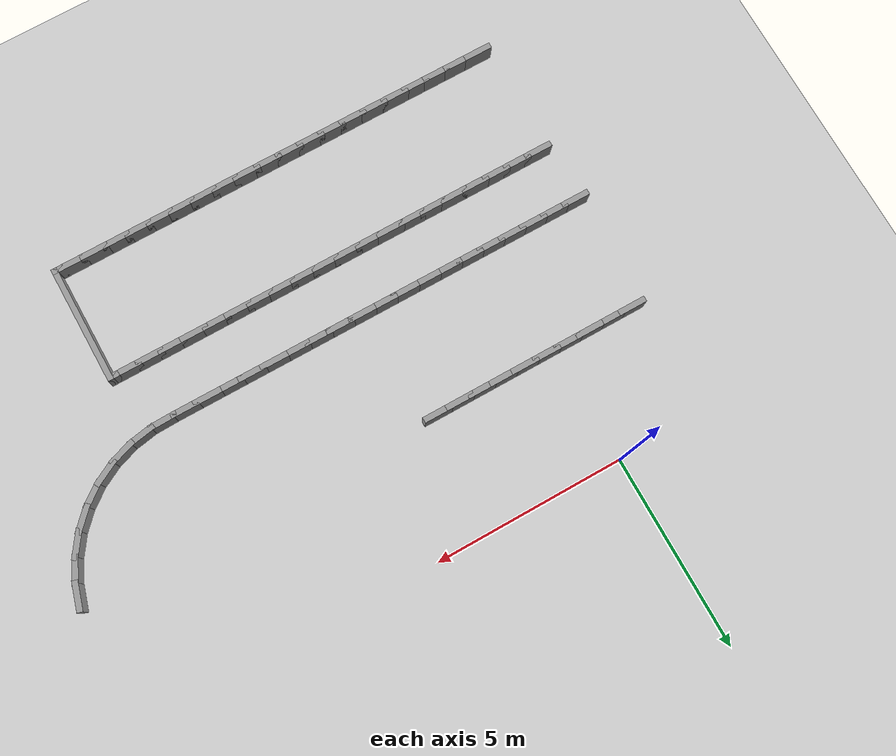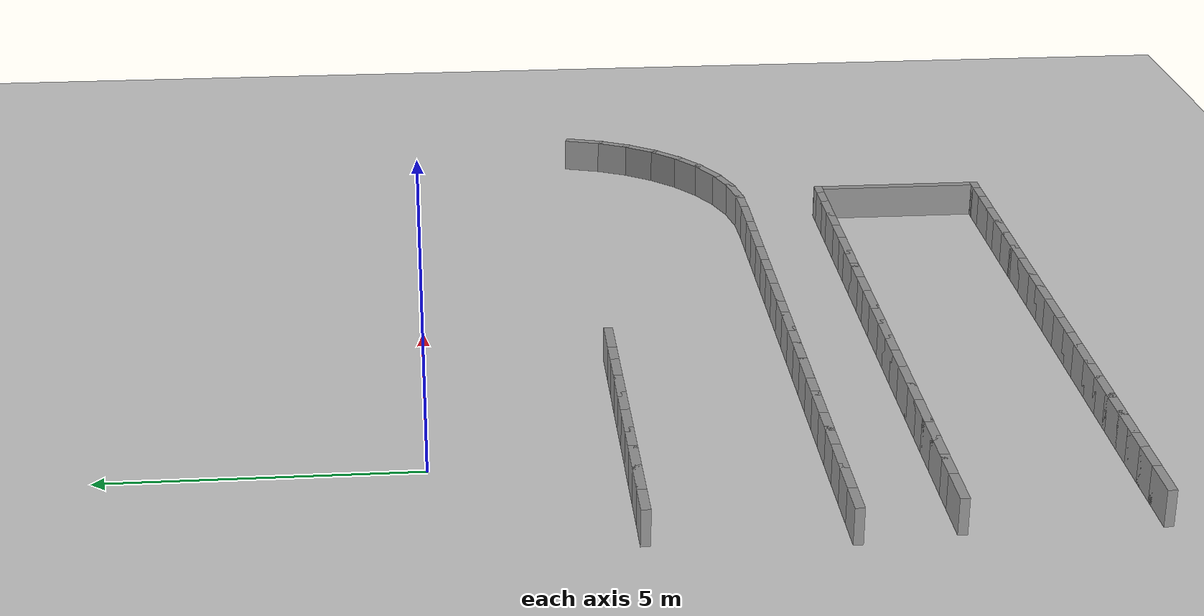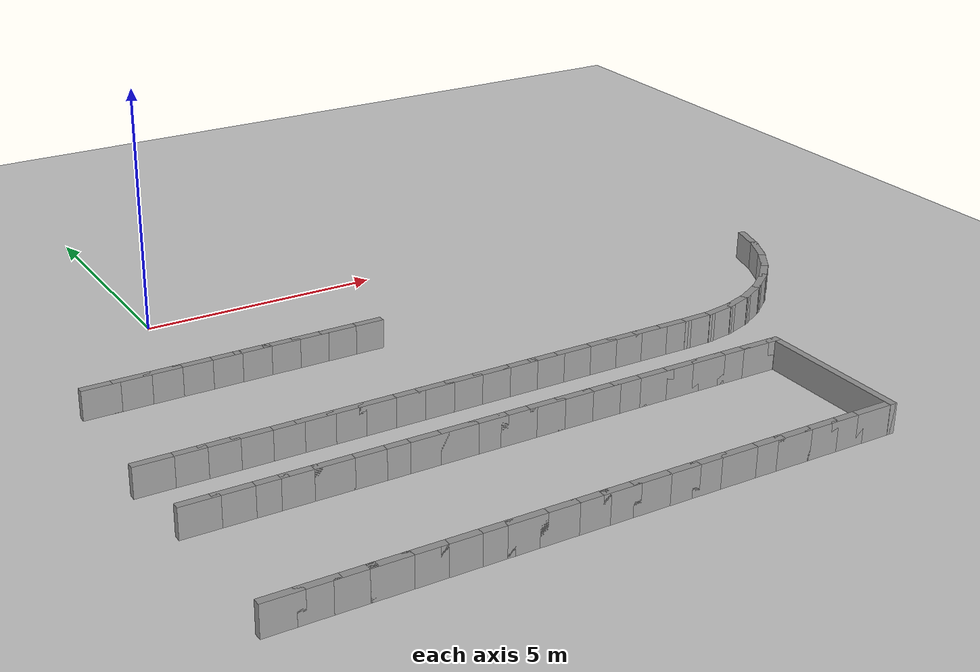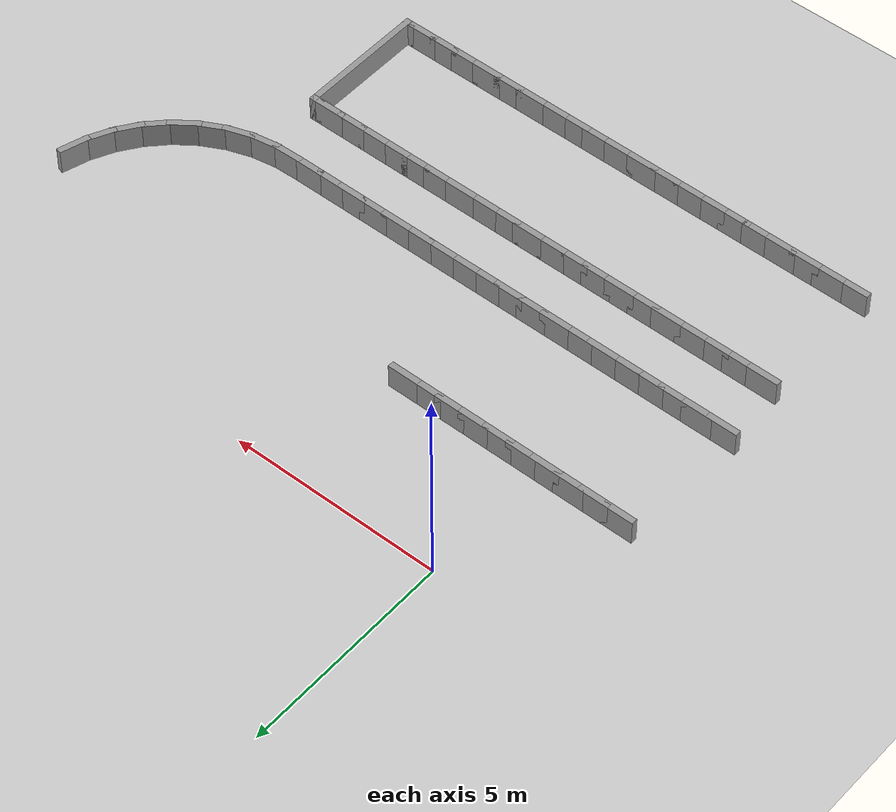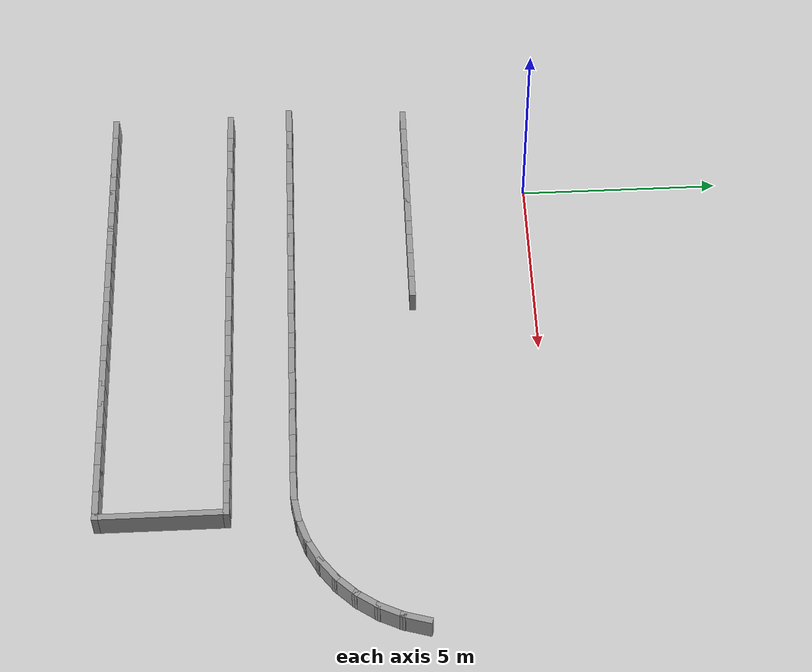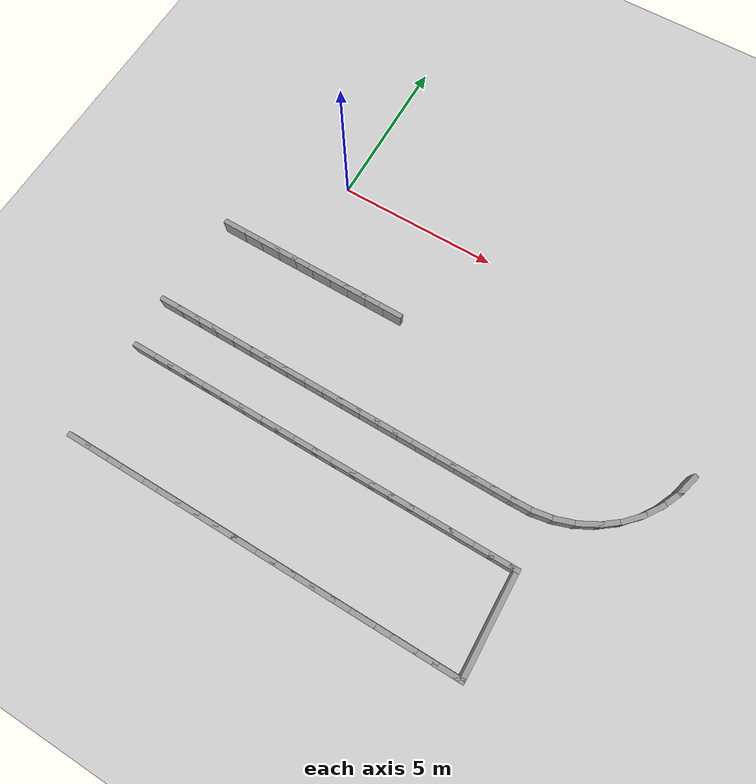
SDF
<sdf version="1.7">
 <world name="default">
  <model name="ground_plane">
   <static>1</static>
   <link name="link">
    <collision name="collision">
     <geometry><plane><normal>0 0 1</normal><size>100 100</size></plane></geometry>
     <surface><friction><ode><mu>100</mu><mu2>50</mu2></ode></friction></surface>
    </collision>
    <visual name="visual">
     <cast_shadows>0</cast_shadows>
     <geometry><plane><normal>0 0 1</normal><size>100 100</size></plane></geometry>
     <material>
      <script><uri>file://media/materials/scripts/gazebo.material</uri><name>Gazebo/Grey</name></script>
     </material>
    </visual>
   </link>
  </model>
  <model name="rand_serp_02">
   <link name="Wall_127">
    <collision name="Wall_127_Collision">
     <geometry><box><size>0.7493 0.1500 0.6000</size></box></geometry>
     <pose>0 0 0.3000 0 -0 0</pose>
    </collision>
    <visual name="Wall_127_Visual">
     <pose>0 0 0.3000 0 -0 0</pose>
     <geometry><box><size>0.7493 0.1500 0.6000</size></box></geometry>
     <material>
      <script><uri>file://media/materials/scripts/gazebo.material</uri><name>Gazebo/Grey</name></script>
      <ambient>1 1 1 1</ambient>
     </material>
    </visual>
    <pose>12.6799 -3.3543 0 0 -0 -1.86052</pose>
   </link>
   <link name="Wall_128">
    <collision name="Wall_128_Collision">
     <geometry><box><size>0.7493 0.1500 0.6000</size></box></geometry>
     <pose>0 0 0.3000 0 -0 0</pose>
    </collision>
    <visual name="Wall_128_Visual">
     <pose>0 0 0.3000 0 -0 0</pose>
     <geometry><box><size>0.7493 0.1500 0.6000</size></box></geometry>
     <material>
      <script><uri>file://media/materials/scripts/gazebo.material</uri><name>Gazebo/Grey</name></script>
      <ambient>1 1 1 1</ambient>
     </material>
    </visual>
    <pose>12.4644 -3.9115 0 0 -0 -2.01911</pose>
   </link>
   <link name="Wall_129">
    <collision name="Wall_129_Collision">
     <geometry><box><size>0.7493 0.1500 0.6000</size></box></geometry>
     <pose>0 0 0.3000 0 -0 0</pose>
    </collision>
    <visual name="Wall_129_Visual">
     <pose>0 0 0.3000 0 -0 0</pose>
     <geometry><box><size>0.7493 0.1500 0.6000</size></box></geometry>
     <material>
      <script><uri>file://media/materials/scripts/gazebo.material</uri><name>Gazebo/Grey</name></script>
      <ambient>1 1 1 1</ambient>
     </material>
    </visual>
    <pose>12.1636 -4.4277 0 0 -0 -2.17770</pose>
   </link>
   <link name="Wall_130">
    <collision name="Wall_130_Collision">
     <geometry><box><size>0.7493 0.1500 0.6000</size></box></geometry>
     <pose>0 0 0.3000 0 -0 0</pose>
    </collision>
    <visual name="Wall_130_Visual">
     <pose>0 0 0.3000 0 -0 0</pose>
     <geometry><box><size>0.7493 0.1500 0.6000</size></box></geometry>
     <material>
      <script><uri>file://media/materials/scripts/gazebo.material</uri><name>Gazebo/Grey</name></script>
      <ambient>1 1 1 1</ambient>
     </material>
    </visual>
    <pose>11.7851 -4.8899 0 0 -0 -2.33629</pose>
   </link>
   <link name="Wall_131">
    <collision name="Wall_131_Collision">
     <geometry><box><size>0.7493 0.1500 0.6000</size></box></geometry>
     <pose>0 0 0.3000 0 -0 0</pose>
    </collision>
    <visual name="Wall_131_Visual">
     <pose>0 0 0.3000 0 -0 0</pose>
     <geometry><box><size>0.7493 0.1500 0.6000</size></box></geometry>
     <material>
      <script><uri>file://media/materials/scripts/gazebo.material</uri><name>Gazebo/Grey</name></script>
      <ambient>1 1 1 1</ambient>
     </material>
    </visual>
    <pose>11.3383 -5.2866 0 0 -0 -2.49488</pose>
   </link>
   <link name="Wall_132">
    <collision name="Wall_132_Collision">
     <geometry><box><size>0.7493 0.1500 0.6000</size></box></geometry>
     <pose>0 0 0.3000 0 -0 0</pose>
    </collision>
    <visual name="Wall_132_Visual">
     <pose>0 0 0.3000 0 -0 0</pose>
     <geometry><box><size>0.7493 0.1500 0.6000</size></box></geometry>
     <material>
      <script><uri>file://media/materials/scripts/gazebo.material</uri><name>Gazebo/Grey</name></script>
      <ambient>1 1 1 1</ambient>
     </material>
    </visual>
    <pose>10.8345 -5.6077 0 0 -0 -2.65347</pose>
   </link>
   <link name="Wall_133">
    <collision name="Wall_133_Collision">
     <geometry><box><size>0.7493 0.1500 0.6000</size></box></geometry>
     <pose>0 0 0.3000 0 -0 0</pose>
    </collision>
    <visual name="Wall_133_Visual">
     <pose>0 0 0.3000 0 -0 0</pose>
     <geometry><box><size>0.7493 0.1500 0.6000</size></box></geometry>
     <material>
      <script><uri>file://media/materials/scripts/gazebo.material</uri><name>Gazebo/Grey</name></script>
      <ambient>1 1 1 1</ambient>
     </material>
    </visual>
    <pose>10.2863 -5.8452 0 0 -0 -2.81205</pose>
   </link>
   <link name="Wall_134">
    <collision name="Wall_134_Collision">
     <geometry><box><size>0.7493 0.1500 0.6000</size></box></geometry>
     <pose>0 0 0.3000 0 -0 0</pose>
    </collision>
    <visual name="Wall_134_Visual">
     <pose>0 0 0.3000 0 -0 0</pose>
     <geometry><box><size>0.7493 0.1500 0.6000</size></box></geometry>
     <material>
      <script><uri>file://media/materials/scripts/gazebo.material</uri><name>Gazebo/Grey</name></script>
      <ambient>1 1 1 1</ambient>
     </material>
    </visual>
    <pose>9.7075 -5.9931 0 0 -0 -2.97064</pose>
   </link>
   <link name="Wall_135">
    <collision name="Wall_135_Collision">
     <geometry><box><size>0.7497 0.1500 0.6000</size></box></geometry>
     <pose>0 0 0.3000 0 -0 0</pose>
    </collision>
    <visual name="Wall_135_Visual">
     <pose>0 0 0.3000 0 -0 0</pose>
     <geometry><box><size>0.7497 0.1500 0.6000</size></box></geometry>
     <material>
      <script><uri>file://media/materials/scripts/gazebo.material</uri><name>Gazebo/Grey</name></script>
      <ambient>1 1 1 1</ambient>
     </material>
    </visual>
    <pose>9.1125 -6.0524 0 0 -0 -3.11404</pose>
   </link>
   <link name="Wall_136">
    <collision name="Wall_136_Collision">
     <geometry><box><size>0.7500 0.1500 0.6000</size></box></geometry>
     <pose>0 0 0.3000 0 -0 0</pose>
    </collision>
    <visual name="Wall_136_Visual">
     <pose>0 0 0.3000 0 -0 0</pose>
     <geometry><box><size>0.7500 0.1500 0.6000</size></box></geometry>
     <material>
      <script><uri>file://media/materials/scripts/gazebo.material</uri><name>Gazebo/Grey</name></script>
      <ambient>1 1 1 1</ambient>
     </material>
    </visual>
    <pose>8.5127 -6.0606 0 0 -0 3.14159</pose>
   </link>
   <link name="Wall_137">
    <collision name="Wall_137_Collision">
     <geometry><box><size>0.7500 0.1500 0.6000</size></box></geometry>
     <pose>0 0 0.3000 0 -0 0</pose>
    </collision>
    <visual name="Wall_137_Visual">
     <pose>0 0 0.3000 0 -0 0</pose>
     <geometry><box><size>0.7500 0.1500 0.6000</size></box></geometry>
     <material>
      <script><uri>file://media/materials/scripts/gazebo.material</uri><name>Gazebo/Grey</name></script>
      <ambient>1 1 1 1</ambient>
     </material>
    </visual>
    <pose>7.9127 -6.0606 0 0 -0 3.14159</pose>
   </link>
   <link name="Wall_138">
    <collision name="Wall_138_Collision">
     <geometry><box><size>0.7500 0.1500 0.6000</size></box></geometry>
     <pose>0 0 0.3000 0 -0 0</pose>
    </collision>
    <visual name="Wall_138_Visual">
     <pose>0 0 0.3000 0 -0 0</pose>
     <geometry><box><size>0.7500 0.1500 0.6000</size></box></geometry>
     <material>
      <script><uri>file://media/materials/scripts/gazebo.material</uri><name>Gazebo/Grey</name></script>
      <ambient>1 1 1 1</ambient>
     </material>
    </visual>
    <pose>7.3127 -6.0606 0 0 -0 3.14159</pose>
   </link>
   <link name="Wall_139">
    <collision name="Wall_139_Collision">
     <geometry><box><size>0.7500 0.1500 0.6000</size></box></geometry>
     <pose>0 0 0.3000 0 -0 0</pose>
    </collision>
    <visual name="Wall_139_Visual">
     <pose>0 0 0.3000 0 -0 0</pose>
     <geometry><box><size>0.7500 0.1500 0.6000</size></box></geometry>
     <material>
      <script><uri>file://media/materials/scripts/gazebo.material</uri><name>Gazebo/Grey</name></script>
      <ambient>1 1 1 1</ambient>
     </material>
    </visual>
    <pose>6.7127 -6.0606 0 0 -0 3.14159</pose>
   </link>
   <link name="Wall_140">
    <collision name="Wall_140_Collision">
     <geometry><box><size>0.7500 0.1500 0.6000</size></box></geometry>
     <pose>0 0 0.3000 0 -0 0</pose>
    </collision>
    <visual name="Wall_140_Visual">
     <pose>0 0 0.3000 0 -0 0</pose>
     <geometry><box><size>0.7500 0.1500 0.6000</size></box></geometry>
     <material>
      <script><uri>file://media/materials/scripts/gazebo.material</uri><name>Gazebo/Grey</name></script>
      <ambient>1 1 1 1</ambient>
     </material>
    </visual>
    <pose>6.1127 -6.0606 0 0 -0 3.14159</pose>
   </link>
   <link name="Wall_141">
    <collision name="Wall_141_Collision">
     <geometry><box><size>0.7500 0.1500 0.6000</size></box></geometry>
     <pose>0 0 0.3000 0 -0 0</pose>
    </collision>
    <visual name="Wall_141_Visual">
     <pose>0 0 0.3000 0 -0 0</pose>
     <geometry><box><size>0.7500 0.1500 0.6000</size></box></geometry>
     <material>
      <script><uri>file://media/materials/scripts/gazebo.material</uri><name>Gazebo/Grey</name></script>
      <ambient>1 1 1 1</ambient>
     </material>
    </visual>
    <pose>5.5127 -6.0606 0 0 -0 3.14159</pose>
   </link>
   <link name="Wall_142">
    <collision name="Wall_142_Collision">
     <geometry><box><size>0.7500 0.1500 0.6000</size></box></geometry>
     <pose>0 0 0.3000 0 -0 0</pose>
    </collision>
    <visual name="Wall_142_Visual">
     <pose>0 0 0.3000 0 -0 0</pose>
     <geometry><box><size>0.7500 0.1500 0.6000</size></box></geometry>
     <material>
      <script><uri>file://media/materials/scripts/gazebo.material</uri><name>Gazebo/Grey</name></script>
      <ambient>1 1 1 1</ambient>
     </material>
    </visual>
    <pose>4.9127 -6.0606 0 0 -0 3.14159</pose>
   </link>
   <link name="Wall_143">
    <collision name="Wall_143_Collision">
     <geometry><box><size>0.7500 0.1500 0.6000</size></box></geometry>
     <pose>0 0 0.3000 0 -0 0</pose>
    </collision>
    <visual name="Wall_143_Visual">
     <pose>0 0 0.3000 0 -0 0</pose>
     <geometry><box><size>0.7500 0.1500 0.6000</size></box></geometry>
     <material>
      <script><uri>file://media/materials/scripts/gazebo.material</uri><name>Gazebo/Grey</name></script>
      <ambient>1 1 1 1</ambient>
     </material>
    </visual>
    <pose>4.3127 -6.0606 0 0 -0 3.14159</pose>
   </link>
   <link name="Wall_144">
    <collision name="Wall_144_Collision">
     <geometry><box><size>0.7500 0.1500 0.6000</size></box></geometry>
     <pose>0 0 0.3000 0 -0 0</pose>
    </collision>
    <visual name="Wall_144_Visual">
     <pose>0 0 0.3000 0 -0 0</pose>
     <geometry><box><size>0.7500 0.1500 0.6000</size></box></geometry>
     <material>
      <script><uri>file://media/materials/scripts/gazebo.material</uri><name>Gazebo/Grey</name></script>
      <ambient>1 1 1 1</ambient>
     </material>
    </visual>
    <pose>3.7127 -6.0606 0 0 -0 3.14159</pose>
   </link>
   <link name="Wall_145">
    <collision name="Wall_145_Collision">
     <geometry><box><size>0.7500 0.1500 0.6000</size></box></geometry>
     <pose>0 0 0.3000 0 -0 0</pose>
    </collision>
    <visual name="Wall_145_Visual">
     <pose>0 0 0.3000 0 -0 0</pose>
     <geometry><box><size>0.7500 0.1500 0.6000</size></box></geometry>
     <material>
      <script><uri>file://media/materials/scripts/gazebo.material</uri><name>Gazebo/Grey</name></script>
      <ambient>1 1 1 1</ambient>
     </material>
    </visual>
    <pose>3.1127 -6.0606 0 0 -0 3.14159</pose>
   </link>
   <link name="Wall_146">
    <collision name="Wall_146_Collision">
     <geometry><box><size>0.7500 0.1500 0.6000</size></box></geometry>
     <pose>0 0 0.3000 0 -0 0</pose>
    </collision>
    <visual name="Wall_146_Visual">
     <pose>0 0 0.3000 0 -0 0</pose>
     <geometry><box><size>0.7500 0.1500 0.6000</size></box></geometry>
     <material>
      <script><uri>file://media/materials/scripts/gazebo.material</uri><name>Gazebo/Grey</name></script>
      <ambient>1 1 1 1</ambient>
     </material>
    </visual>
    <pose>2.5127 -6.0606 0 0 -0 3.14159</pose>
   </link>
   <link name="Wall_147">
    <collision name="Wall_147_Collision">
     <geometry><box><size>0.7500 0.1500 0.6000</size></box></geometry>
     <pose>0 0 0.3000 0 -0 0</pose>
    </collision>
    <visual name="Wall_147_Visual">
     <pose>0 0 0.3000 0 -0 0</pose>
     <geometry><box><size>0.7500 0.1500 0.6000</size></box></geometry>
     <material>
      <script><uri>file://media/materials/scripts/gazebo.material</uri><name>Gazebo/Grey</name></script>
      <ambient>1 1 1 1</ambient>
     </material>
    </visual>
    <pose>1.9127 -6.0606 0 0 -0 3.14159</pose>
   </link>
   <link name="Wall_148">
    <collision name="Wall_148_Collision">
     <geometry><box><size>0.7500 0.1500 0.6000</size></box></geometry>
     <pose>0 0 0.3000 0 -0 0</pose>
    </collision>
    <visual name="Wall_148_Visual">
     <pose>0 0 0.3000 0 -0 0</pose>
     <geometry><box><size>0.7500 0.1500 0.6000</size></box></geometry>
     <material>
      <script><uri>file://media/materials/scripts/gazebo.material</uri><name>Gazebo/Grey</name></script>
      <ambient>1 1 1 1</ambient>
     </material>
    </visual>
    <pose>1.3127 -6.0606 0 0 -0 3.14159</pose>
   </link>
   <link name="Wall_149">
    <collision name="Wall_149_Collision">
     <geometry><box><size>0.7500 0.1500 0.6000</size></box></geometry>
     <pose>0 0 0.3000 0 -0 0</pose>
    </collision>
    <visual name="Wall_149_Visual">
     <pose>0 0 0.3000 0 -0 0</pose>
     <geometry><box><size>0.7500 0.1500 0.6000</size></box></geometry>
     <material>
      <script><uri>file://media/materials/scripts/gazebo.material</uri><name>Gazebo/Grey</name></script>
      <ambient>1 1 1 1</ambient>
     </material>
    </visual>
    <pose>0.7127 -6.0606 0 0 -0 3.14159</pose>
   </link>
   <link name="Wall_150">
    <collision name="Wall_150_Collision">
     <geometry><box><size>0.7500 0.1500 0.6000</size></box></geometry>
     <pose>0 0 0.3000 0 -0 0</pose>
    </collision>
    <visual name="Wall_150_Visual">
     <pose>0 0 0.3000 0 -0 0</pose>
     <geometry><box><size>0.7500 0.1500 0.6000</size></box></geometry>
     <material>
      <script><uri>file://media/materials/scripts/gazebo.material</uri><name>Gazebo/Grey</name></script>
      <ambient>1 1 1 1</ambient>
     </material>
    </visual>
    <pose>0.1127 -6.0606 0 0 -0 3.14159</pose>
   </link>
   <link name="Wall_151">
    <collision name="Wall_151_Collision">
     <geometry><box><size>0.7500 0.1500 0.6000</size></box></geometry>
     <pose>0 0 0.3000 0 -0 0</pose>
    </collision>
    <visual name="Wall_151_Visual">
     <pose>0 0 0.3000 0 -0 0</pose>
     <geometry><box><size>0.7500 0.1500 0.6000</size></box></geometry>
     <material>
      <script><uri>file://media/materials/scripts/gazebo.material</uri><name>Gazebo/Grey</name></script>
      <ambient>1 1 1 1</ambient>
     </material>
    </visual>
    <pose>-0.4873 -6.0606 0 0 -0 3.14159</pose>
   </link>
   <link name="Wall_152">
    <collision name="Wall_152_Collision">
     <geometry><box><size>0.7500 0.1500 0.6000</size></box></geometry>
     <pose>0 0 0.3000 0 -0 0</pose>
    </collision>
    <visual name="Wall_152_Visual">
     <pose>0 0 0.3000 0 -0 0</pose>
     <geometry><box><size>0.7500 0.1500 0.6000</size></box></geometry>
     <material>
      <script><uri>file://media/materials/scripts/gazebo.material</uri><name>Gazebo/Grey</name></script>
      <ambient>1 1 1 1</ambient>
     </material>
    </visual>
    <pose>-1.0873 -6.0606 0 0 -0 3.14159</pose>
   </link>
   <link name="Wall_153">
    <collision name="Wall_153_Collision">
     <geometry><box><size>0.7500 0.1500 0.6000</size></box></geometry>
     <pose>0 0 0.3000 0 -0 0</pose>
    </collision>
    <visual name="Wall_153_Visual">
     <pose>0 0 0.3000 0 -0 0</pose>
     <geometry><box><size>0.7500 0.1500 0.6000</size></box></geometry>
     <material>
      <script><uri>file://media/materials/scripts/gazebo.material</uri><name>Gazebo/Grey</name></script>
      <ambient>1 1 1 1</ambient>
     </material>
    </visual>
    <pose>-1.6873 -6.0606 0 0 -0 3.14159</pose>
   </link>
   <link name="Wall_154">
    <collision name="Wall_154_Collision">
     <geometry><box><size>0.7500 0.1500 0.6000</size></box></geometry>
     <pose>0 0 0.3000 0 -0 0</pose>
    </collision>
    <visual name="Wall_154_Visual">
     <pose>0 0 0.3000 0 -0 0</pose>
     <geometry><box><size>0.7500 0.1500 0.6000</size></box></geometry>
     <material>
      <script><uri>file://media/materials/scripts/gazebo.material</uri><name>Gazebo/Grey</name></script>
      <ambient>1 1 1 1</ambient>
     </material>
    </visual>
    <pose>-2.2873 -6.0606 0 0 -0 3.14159</pose>
   </link>
   <link name="Wall_181">
    <collision name="Wall_181_Collision">
     <geometry><box><size>0.7500 0.1500 0.6000</size></box></geometry>
     <pose>0 0 0.3000 0 -0 0</pose>
    </collision>
    <visual name="Wall_181_Visual">
     <pose>0 0 0.3000 0 -0 0</pose>
     <geometry><box><size>0.7500 0.1500 0.6000</size></box></geometry>
     <material>
      <script><uri>file://media/materials/scripts/gazebo.material</uri><name>Gazebo/Grey</name></script>
      <ambient>1 1 1 1</ambient>
     </material>
    </visual>
    <pose>-2.1246 -7.6015 0 0 -0 0.00000</pose>
   </link>
   <link name="Wall_182">
    <collision name="Wall_182_Collision">
     <geometry><box><size>0.7500 0.1500 0.6000</size></box></geometry>
     <pose>0 0 0.3000 0 -0 0</pose>
    </collision>
    <visual name="Wall_182_Visual">
     <pose>0 0 0.3000 0 -0 0</pose>
     <geometry><box><size>0.7500 0.1500 0.6000</size></box></geometry>
     <material>
      <script><uri>file://media/materials/scripts/gazebo.material</uri><name>Gazebo/Grey</name></script>
      <ambient>1 1 1 1</ambient>
     </material>
    </visual>
    <pose>-1.5246 -7.6015 0 0 -0 0.00000</pose>
   </link>
   <link name="Wall_183">
    <collision name="Wall_183_Collision">
     <geometry><box><size>0.7500 0.1500 0.6000</size></box></geometry>
     <pose>0 0 0.3000 0 -0 0</pose>
    </collision>
    <visual name="Wall_183_Visual">
     <pose>0 0 0.3000 0 -0 0</pose>
     <geometry><box><size>0.7500 0.1500 0.6000</size></box></geometry>
     <material>
      <script><uri>file://media/materials/scripts/gazebo.material</uri><name>Gazebo/Grey</name></script>
      <ambient>1 1 1 1</ambient>
     </material>
    </visual>
    <pose>-0.9246 -7.6015 0 0 -0 0.00000</pose>
   </link>
   <link name="Wall_184">
    <collision name="Wall_184_Collision">
     <geometry><box><size>0.7500 0.1500 0.6000</size></box></geometry>
     <pose>0 0 0.3000 0 -0 0</pose>
    </collision>
    <visual name="Wall_184_Visual">
     <pose>0 0 0.3000 0 -0 0</pose>
     <geometry><box><size>0.7500 0.1500 0.6000</size></box></geometry>
     <material>
      <script><uri>file://media/materials/scripts/gazebo.material</uri><name>Gazebo/Grey</name></script>
      <ambient>1 1 1 1</ambient>
     </material>
    </visual>
    <pose>-0.3246 -7.6015 0 0 -0 0.00000</pose>
   </link>
   <link name="Wall_185">
    <collision name="Wall_185_Collision">
     <geometry><box><size>0.7500 0.1500 0.6000</size></box></geometry>
     <pose>0 0 0.3000 0 -0 0</pose>
    </collision>
    <visual name="Wall_185_Visual">
     <pose>0 0 0.3000 0 -0 0</pose>
     <geometry><box><size>0.7500 0.1500 0.6000</size></box></geometry>
     <material>
      <script><uri>file://media/materials/scripts/gazebo.material</uri><name>Gazebo/Grey</name></script>
      <ambient>1 1 1 1</ambient>
     </material>
    </visual>
    <pose>0.2754 -7.6015 0 0 -0 0.00000</pose>
   </link>
   <link name="Wall_186">
    <collision name="Wall_186_Collision">
     <geometry><box><size>0.7500 0.1500 0.6000</size></box></geometry>
     <pose>0 0 0.3000 0 -0 0</pose>
    </collision>
    <visual name="Wall_186_Visual">
     <pose>0 0 0.3000 0 -0 0</pose>
     <geometry><box><size>0.7500 0.1500 0.6000</size></box></geometry>
     <material>
      <script><uri>file://media/materials/scripts/gazebo.material</uri><name>Gazebo/Grey</name></script>
      <ambient>1 1 1 1</ambient>
     </material>
    </visual>
    <pose>0.8754 -7.6015 0 0 -0 0.00000</pose>
   </link>
   <link name="Wall_187">
    <collision name="Wall_187_Collision">
     <geometry><box><size>0.7500 0.1500 0.6000</size></box></geometry>
     <pose>0 0 0.3000 0 -0 0</pose>
    </collision>
    <visual name="Wall_187_Visual">
     <pose>0 0 0.3000 0 -0 0</pose>
     <geometry><box><size>0.7500 0.1500 0.6000</size></box></geometry>
     <material>
      <script><uri>file://media/materials/scripts/gazebo.material</uri><name>Gazebo/Grey</name></script>
      <ambient>1 1 1 1</ambient>
     </material>
    </visual>
    <pose>1.4754 -7.6015 0 0 -0 0.00000</pose>
   </link>
   <link name="Wall_188">
    <collision name="Wall_188_Collision">
     <geometry><box><size>0.7500 0.1500 0.6000</size></box></geometry>
     <pose>0 0 0.3000 0 -0 0</pose>
    </collision>
    <visual name="Wall_188_Visual">
     <pose>0 0 0.3000 0 -0 0</pose>
     <geometry><box><size>0.7500 0.1500 0.6000</size></box></geometry>
     <material>
      <script><uri>file://media/materials/scripts/gazebo.material</uri><name>Gazebo/Grey</name></script>
      <ambient>1 1 1 1</ambient>
     </material>
    </visual>
    <pose>2.0754 -7.6015 0 0 -0 0.00000</pose>
   </link>
   <link name="Wall_189">
    <collision name="Wall_189_Collision">
     <geometry><box><size>0.7500 0.1500 0.6000</size></box></geometry>
     <pose>0 0 0.3000 0 -0 0</pose>
    </collision>
    <visual name="Wall_189_Visual">
     <pose>0 0 0.3000 0 -0 0</pose>
     <geometry><box><size>0.7500 0.1500 0.6000</size></box></geometry>
     <material>
      <script><uri>file://media/materials/scripts/gazebo.material</uri><name>Gazebo/Grey</name></script>
      <ambient>1 1 1 1</ambient>
     </material>
    </visual>
    <pose>2.6754 -7.6015 0 0 -0 0.00000</pose>
   </link>
   <link name="Wall_190">
    <collision name="Wall_190_Collision">
     <geometry><box><size>0.7500 0.1500 0.6000</size></box></geometry>
     <pose>0 0 0.3000 0 -0 0</pose>
    </collision>
    <visual name="Wall_190_Visual">
     <pose>0 0 0.3000 0 -0 0</pose>
     <geometry><box><size>0.7500 0.1500 0.6000</size></box></geometry>
     <material>
      <script><uri>file://media/materials/scripts/gazebo.material</uri><name>Gazebo/Grey</name></script>
      <ambient>1 1 1 1</ambient>
     </material>
    </visual>
    <pose>3.2754 -7.6015 0 0 -0 0.00000</pose>
   </link>
   <link name="Wall_191">
    <collision name="Wall_191_Collision">
     <geometry><box><size>0.7500 0.1500 0.6000</size></box></geometry>
     <pose>0 0 0.3000 0 -0 0</pose>
    </collision>
    <visual name="Wall_191_Visual">
     <pose>0 0 0.3000 0 -0 0</pose>
     <geometry><box><size>0.7500 0.1500 0.6000</size></box></geometry>
     <material>
      <script><uri>file://media/materials/scripts/gazebo.material</uri><name>Gazebo/Grey</name></script>
      <ambient>1 1 1 1</ambient>
     </material>
    </visual>
    <pose>3.8754 -7.6015 0 0 -0 0.00000</pose>
   </link>
   <link name="Wall_192">
    <collision name="Wall_192_Collision">
     <geometry><box><size>0.7500 0.1500 0.6000</size></box></geometry>
     <pose>0 0 0.3000 0 -0 0</pose>
    </collision>
    <visual name="Wall_192_Visual">
     <pose>0 0 0.3000 0 -0 0</pose>
     <geometry><box><size>0.7500 0.1500 0.6000</size></box></geometry>
     <material>
      <script><uri>file://media/materials/scripts/gazebo.material</uri><name>Gazebo/Grey</name></script>
      <ambient>1 1 1 1</ambient>
     </material>
    </visual>
    <pose>4.4754 -7.6015 0 0 -0 0.00000</pose>
   </link>
   <link name="Wall_193">
    <collision name="Wall_193_Collision">
     <geometry><box><size>0.7500 0.1500 0.6000</size></box></geometry>
     <pose>0 0 0.3000 0 -0 0</pose>
    </collision>
    <visual name="Wall_193_Visual">
     <pose>0 0 0.3000 0 -0 0</pose>
     <geometry><box><size>0.7500 0.1500 0.6000</size></box></geometry>
     <material>
      <script><uri>file://media/materials/scripts/gazebo.material</uri><name>Gazebo/Grey</name></script>
      <ambient>1 1 1 1</ambient>
     </material>
    </visual>
    <pose>5.0754 -7.6015 0 0 -0 0.00000</pose>
   </link>
   <link name="Wall_194">
    <collision name="Wall_194_Collision">
     <geometry><box><size>0.7500 0.1500 0.6000</size></box></geometry>
     <pose>0 0 0.3000 0 -0 0</pose>
    </collision>
    <visual name="Wall_194_Visual">
     <pose>0 0 0.3000 0 -0 0</pose>
     <geometry><box><size>0.7500 0.1500 0.6000</size></box></geometry>
     <material>
      <script><uri>file://media/materials/scripts/gazebo.material</uri><name>Gazebo/Grey</name></script>
      <ambient>1 1 1 1</ambient>
     </material>
    </visual>
    <pose>5.6754 -7.6015 0 0 -0 0.00000</pose>
   </link>
   <link name="Wall_195">
    <collision name="Wall_195_Collision">
     <geometry><box><size>0.7500 0.1500 0.6000</size></box></geometry>
     <pose>0 0 0.3000 0 -0 0</pose>
    </collision>
    <visual name="Wall_195_Visual">
     <pose>0 0 0.3000 0 -0 0</pose>
     <geometry><box><size>0.7500 0.1500 0.6000</size></box></geometry>
     <material>
      <script><uri>file://media/materials/scripts/gazebo.material</uri><name>Gazebo/Grey</name></script>
      <ambient>1 1 1 1</ambient>
     </material>
    </visual>
    <pose>6.2754 -7.6015 0 0 -0 0.00000</pose>
   </link>
   <link name="Wall_196">
    <collision name="Wall_196_Collision">
     <geometry><box><size>0.7500 0.1500 0.6000</size></box></geometry>
     <pose>0 0 0.3000 0 -0 0</pose>
    </collision>
    <visual name="Wall_196_Visual">
     <pose>0 0 0.3000 0 -0 0</pose>
     <geometry><box><size>0.7500 0.1500 0.6000</size></box></geometry>
     <material>
      <script><uri>file://media/materials/scripts/gazebo.material</uri><name>Gazebo/Grey</name></script>
      <ambient>1 1 1 1</ambient>
     </material>
    </visual>
    <pose>6.8754 -7.6015 0 0 -0 0.00000</pose>
   </link>
   <link name="Wall_197">
    <collision name="Wall_197_Collision">
     <geometry><box><size>0.7500 0.1500 0.6000</size></box></geometry>
     <pose>0 0 0.3000 0 -0 0</pose>
    </collision>
    <visual name="Wall_197_Visual">
     <pose>0 0 0.3000 0 -0 0</pose>
     <geometry><box><size>0.7500 0.1500 0.6000</size></box></geometry>
     <material>
      <script><uri>file://media/materials/scripts/gazebo.material</uri><name>Gazebo/Grey</name></script>
      <ambient>1 1 1 1</ambient>
     </material>
    </visual>
    <pose>7.4754 -7.6015 0 0 -0 0.00000</pose>
   </link>
   <link name="Wall_198">
    <collision name="Wall_198_Collision">
     <geometry><box><size>0.7500 0.1500 0.6000</size></box></geometry>
     <pose>0 0 0.3000 0 -0 0</pose>
    </collision>
    <visual name="Wall_198_Visual">
     <pose>0 0 0.3000 0 -0 0</pose>
     <geometry><box><size>0.7500 0.1500 0.6000</size></box></geometry>
     <material>
      <script><uri>file://media/materials/scripts/gazebo.material</uri><name>Gazebo/Grey</name></script>
      <ambient>1 1 1 1</ambient>
     </material>
    </visual>
    <pose>8.0754 -7.6015 0 0 -0 0.00000</pose>
   </link>
   <link name="Wall_199">
    <collision name="Wall_199_Collision">
     <geometry><box><size>0.7500 0.1500 0.6000</size></box></geometry>
     <pose>0 0 0.3000 0 -0 0</pose>
    </collision>
    <visual name="Wall_199_Visual">
     <pose>0 0 0.3000 0 -0 0</pose>
     <geometry><box><size>0.7500 0.1500 0.6000</size></box></geometry>
     <material>
      <script><uri>file://media/materials/scripts/gazebo.material</uri><name>Gazebo/Grey</name></script>
      <ambient>1 1 1 1</ambient>
     </material>
    </visual>
    <pose>8.6754 -7.6015 0 0 -0 0.00000</pose>
   </link>
   <link name="Wall_200">
    <collision name="Wall_200_Collision">
     <geometry><box><size>0.7500 0.1500 0.6000</size></box></geometry>
     <pose>0 0 0.3000 0 -0 0</pose>
    </collision>
    <visual name="Wall_200_Visual">
     <pose>0 0 0.3000 0 -0 0</pose>
     <geometry><box><size>0.7500 0.1500 0.6000</size></box></geometry>
     <material>
      <script><uri>file://media/materials/scripts/gazebo.material</uri><name>Gazebo/Grey</name></script>
      <ambient>1 1 1 1</ambient>
     </material>
    </visual>
    <pose>9.2754 -7.6015 0 0 -0 0.00000</pose>
   </link>
   <link name="Wall_201">
    <collision name="Wall_201_Collision">
     <geometry><box><size>0.3088 0.1500 0.6000</size></box></geometry>
     <pose>0 0 0.3000 0 -0 0</pose>
    </collision>
    <visual name="Wall_201_Visual">
     <pose>0 0 0.3000 0 -0 0</pose>
     <geometry><box><size>0.3088 0.1500 0.6000</size></box></geometry>
     <material>
      <script><uri>file://media/materials/scripts/gazebo.material</uri><name>Gazebo/Grey</name></script>
      <ambient>1 1 1 1</ambient>
     </material>
    </visual>
    <pose>9.6548 -7.6015 0 0 -0 0.00000</pose>
   </link>
   <link name="Wall_331">
    <collision name="Wall_331_Collision">
     <geometry><box><size>0.7500 0.1500 0.6000</size></box></geometry>
     <pose>0 0 0.3000 0 -0 0</pose>
    </collision>
    <visual name="Wall_331_Visual">
     <pose>0 0 0.3000 0 -0 0</pose>
     <geometry><box><size>0.7500 0.1500 0.6000</size></box></geometry>
     <material>
      <script><uri>file://media/materials/scripts/gazebo.material</uri><name>Gazebo/Grey</name></script>
      <ambient>1 1 1 1</ambient>
     </material>
    </visual>
    <pose>3.3072 -3.0475 0 0 -0 3.14159</pose>
   </link>
   <link name="Wall_332">
    <collision name="Wall_332_Collision">
     <geometry><box><size>0.7500 0.1500 0.6000</size></box></geometry>
     <pose>0 0 0.3000 0 -0 0</pose>
    </collision>
    <visual name="Wall_332_Visual">
     <pose>0 0 0.3000 0 -0 0</pose>
     <geometry><box><size>0.7500 0.1500 0.6000</size></box></geometry>
     <material>
      <script><uri>file://media/materials/scripts/gazebo.material</uri><name>Gazebo/Grey</name></script>
      <ambient>1 1 1 1</ambient>
     </material>
    </visual>
    <pose>2.7072 -3.0475 0 0 -0 3.14159</pose>
   </link>
   <link name="Wall_333">
    <collision name="Wall_333_Collision">
     <geometry><box><size>0.7500 0.1500 0.6000</size></box></geometry>
     <pose>0 0 0.3000 0 -0 0</pose>
    </collision>
    <visual name="Wall_333_Visual">
     <pose>0 0 0.3000 0 -0 0</pose>
     <geometry><box><size>0.7500 0.1500 0.6000</size></box></geometry>
     <material>
      <script><uri>file://media/materials/scripts/gazebo.material</uri><name>Gazebo/Grey</name></script>
      <ambient>1 1 1 1</ambient>
     </material>
    </visual>
    <pose>2.1072 -3.0475 0 0 -0 3.14159</pose>
   </link>
   <link name="Wall_334">
    <collision name="Wall_334_Collision">
     <geometry><box><size>0.7500 0.1500 0.6000</size></box></geometry>
     <pose>0 0 0.3000 0 -0 0</pose>
    </collision>
    <visual name="Wall_334_Visual">
     <pose>0 0 0.3000 0 -0 0</pose>
     <geometry><box><size>0.7500 0.1500 0.6000</size></box></geometry>
     <material>
      <script><uri>file://media/materials/scripts/gazebo.material</uri><name>Gazebo/Grey</name></script>
      <ambient>1 1 1 1</ambient>
     </material>
    </visual>
    <pose>1.5072 -3.0475 0 0 -0 3.14159</pose>
   </link>
   <link name="Wall_335">
    <collision name="Wall_335_Collision">
     <geometry><box><size>0.7500 0.1500 0.6000</size></box></geometry>
     <pose>0 0 0.3000 0 -0 0</pose>
    </collision>
    <visual name="Wall_335_Visual">
     <pose>0 0 0.3000 0 -0 0</pose>
     <geometry><box><size>0.7500 0.1500 0.6000</size></box></geometry>
     <material>
      <script><uri>file://media/materials/scripts/gazebo.material</uri><name>Gazebo/Grey</name></script>
      <ambient>1 1 1 1</ambient>
     </material>
    </visual>
    <pose>0.9072 -3.0475 0 0 -0 3.14159</pose>
   </link>
   <link name="Wall_336">
    <collision name="Wall_336_Collision">
     <geometry><box><size>0.7500 0.1500 0.6000</size></box></geometry>
     <pose>0 0 0.3000 0 -0 0</pose>
    </collision>
    <visual name="Wall_336_Visual">
     <pose>0 0 0.3000 0 -0 0</pose>
     <geometry><box><size>0.7500 0.1500 0.6000</size></box></geometry>
     <material>
      <script><uri>file://media/materials/scripts/gazebo.material</uri><name>Gazebo/Grey</name></script>
      <ambient>1 1 1 1</ambient>
     </material>
    </visual>
    <pose>0.3072 -3.0475 0 0 -0 3.14159</pose>
   </link>
   <link name="Wall_337">
    <collision name="Wall_337_Collision">
     <geometry><box><size>0.7500 0.1500 0.6000</size></box></geometry>
     <pose>0 0 0.3000 0 -0 0</pose>
    </collision>
    <visual name="Wall_337_Visual">
     <pose>0 0 0.3000 0 -0 0</pose>
     <geometry><box><size>0.7500 0.1500 0.6000</size></box></geometry>
     <material>
      <script><uri>file://media/materials/scripts/gazebo.material</uri><name>Gazebo/Grey</name></script>
      <ambient>1 1 1 1</ambient>
     </material>
    </visual>
    <pose>-0.2928 -3.0475 0 0 -0 3.14159</pose>
   </link>
   <link name="Wall_338">
    <collision name="Wall_338_Collision">
     <geometry><box><size>0.7500 0.1500 0.6000</size></box></geometry>
     <pose>0 0 0.3000 0 -0 0</pose>
    </collision>
    <visual name="Wall_338_Visual">
     <pose>0 0 0.3000 0 -0 0</pose>
     <geometry><box><size>0.7500 0.1500 0.6000</size></box></geometry>
     <material>
      <script><uri>file://media/materials/scripts/gazebo.material</uri><name>Gazebo/Grey</name></script>
      <ambient>1 1 1 1</ambient>
     </material>
    </visual>
    <pose>-0.8928 -3.0475 0 0 -0 3.14159</pose>
   </link>
   <link name="Wall_339">
    <collision name="Wall_339_Collision">
     <geometry><box><size>0.7500 0.1500 0.6000</size></box></geometry>
     <pose>0 0 0.3000 0 -0 0</pose>
    </collision>
    <visual name="Wall_339_Visual">
     <pose>0 0 0.3000 0 -0 0</pose>
     <geometry><box><size>0.7500 0.1500 0.6000</size></box></geometry>
     <material>
      <script><uri>file://media/materials/scripts/gazebo.material</uri><name>Gazebo/Grey</name></script>
      <ambient>1 1 1 1</ambient>
     </material>
    </visual>
    <pose>-1.4928 -3.0475 0 0 -0 3.14159</pose>
   </link>
   <link name="Wall_340">
    <collision name="Wall_340_Collision">
     <geometry><box><size>0.7500 0.1500 0.6000</size></box></geometry>
     <pose>0 0 0.3000 0 -0 0</pose>
    </collision>
    <visual name="Wall_340_Visual">
     <pose>0 0 0.3000 0 -0 0</pose>
     <geometry><box><size>0.7500 0.1500 0.6000</size></box></geometry>
     <material>
      <script><uri>file://media/materials/scripts/gazebo.material</uri><name>Gazebo/Grey</name></script>
      <ambient>1 1 1 1</ambient>
     </material>
    </visual>
    <pose>-2.0928 -3.0475 0 0 -0 3.14159</pose>
   </link>
   <link name="Wall_383">
    <collision name="Wall_383_Collision">
     <geometry><box><size>0.7500 0.1500 0.6000</size></box></geometry>
     <pose>0 0 0.3000 0 -0 0</pose>
    </collision>
    <visual name="Wall_383_Visual">
     <pose>0 0 0.3000 0 -0 0</pose>
     <geometry><box><size>0.7500 0.1500 0.6000</size></box></geometry>
     <material>
      <script><uri>file://media/materials/scripts/gazebo.material</uri><name>Gazebo/Grey</name></script>
      <ambient>1 1 1 1</ambient>
     </material>
    </visual>
    <pose>-2.1246 -10.6147 0 0 -0 0.00000</pose>
   </link>
   <link name="Wall_384">
    <collision name="Wall_384_Collision">
     <geometry><box><size>0.7500 0.1500 0.6000</size></box></geometry>
     <pose>0 0 0.3000 0 -0 0</pose>
    </collision>
    <visual name="Wall_384_Visual">
     <pose>0 0 0.3000 0 -0 0</pose>
     <geometry><box><size>0.7500 0.1500 0.6000</size></box></geometry>
     <material>
      <script><uri>file://media/materials/scripts/gazebo.material</uri><name>Gazebo/Grey</name></script>
      <ambient>1 1 1 1</ambient>
     </material>
    </visual>
    <pose>-1.5246 -10.6147 0 0 -0 0.00000</pose>
   </link>
   <link name="Wall_385">
    <collision name="Wall_385_Collision">
     <geometry><box><size>0.7500 0.1500 0.6000</size></box></geometry>
     <pose>0 0 0.3000 0 -0 0</pose>
    </collision>
    <visual name="Wall_385_Visual">
     <pose>0 0 0.3000 0 -0 0</pose>
     <geometry><box><size>0.7500 0.1500 0.6000</size></box></geometry>
     <material>
      <script><uri>file://media/materials/scripts/gazebo.material</uri><name>Gazebo/Grey</name></script>
      <ambient>1 1 1 1</ambient>
     </material>
    </visual>
    <pose>-0.9246 -10.6147 0 0 -0 0.00000</pose>
   </link>
   <link name="Wall_386">
    <collision name="Wall_386_Collision">
     <geometry><box><size>0.7500 0.1500 0.6000</size></box></geometry>
     <pose>0 0 0.3000 0 -0 0</pose>
    </collision>
    <visual name="Wall_386_Visual">
     <pose>0 0 0.3000 0 -0 0</pose>
     <geometry><box><size>0.7500 0.1500 0.6000</size></box></geometry>
     <material>
      <script><uri>file://media/materials/scripts/gazebo.material</uri><name>Gazebo/Grey</name></script>
      <ambient>1 1 1 1</ambient>
     </material>
    </visual>
    <pose>-0.3246 -10.6147 0 0 -0 0.00000</pose>
   </link>
   <link name="Wall_387">
    <collision name="Wall_387_Collision">
     <geometry><box><size>0.7500 0.1500 0.6000</size></box></geometry>
     <pose>0 0 0.3000 0 -0 0</pose>
    </collision>
    <visual name="Wall_387_Visual">
     <pose>0 0 0.3000 0 -0 0</pose>
     <geometry><box><size>0.7500 0.1500 0.6000</size></box></geometry>
     <material>
      <script><uri>file://media/materials/scripts/gazebo.material</uri><name>Gazebo/Grey</name></script>
      <ambient>1 1 1 1</ambient>
     </material>
    </visual>
    <pose>0.2754 -10.6147 0 0 -0 0.00000</pose>
   </link>
   <link name="Wall_388">
    <collision name="Wall_388_Collision">
     <geometry><box><size>0.7500 0.1500 0.6000</size></box></geometry>
     <pose>0 0 0.3000 0 -0 0</pose>
    </collision>
    <visual name="Wall_388_Visual">
     <pose>0 0 0.3000 0 -0 0</pose>
     <geometry><box><size>0.7500 0.1500 0.6000</size></box></geometry>
     <material>
      <script><uri>file://media/materials/scripts/gazebo.material</uri><name>Gazebo/Grey</name></script>
      <ambient>1 1 1 1</ambient>
     </material>
    </visual>
    <pose>0.8754 -10.6147 0 0 -0 0.00000</pose>
   </link>
   <link name="Wall_389">
    <collision name="Wall_389_Collision">
     <geometry><box><size>0.7500 0.1500 0.6000</size></box></geometry>
     <pose>0 0 0.3000 0 -0 0</pose>
    </collision>
    <visual name="Wall_389_Visual">
     <pose>0 0 0.3000 0 -0 0</pose>
     <geometry><box><size>0.7500 0.1500 0.6000</size></box></geometry>
     <material>
      <script><uri>file://media/materials/scripts/gazebo.material</uri><name>Gazebo/Grey</name></script>
      <ambient>1 1 1 1</ambient>
     </material>
    </visual>
    <pose>1.4754 -10.6147 0 0 -0 0.00000</pose>
   </link>
   <link name="Wall_390">
    <collision name="Wall_390_Collision">
     <geometry><box><size>0.7500 0.1500 0.6000</size></box></geometry>
     <pose>0 0 0.3000 0 -0 0</pose>
    </collision>
    <visual name="Wall_390_Visual">
     <pose>0 0 0.3000 0 -0 0</pose>
     <geometry><box><size>0.7500 0.1500 0.6000</size></box></geometry>
     <material>
      <script><uri>file://media/materials/scripts/gazebo.material</uri><name>Gazebo/Grey</name></script>
      <ambient>1 1 1 1</ambient>
     </material>
    </visual>
    <pose>2.0754 -10.6147 0 0 -0 0.00000</pose>
   </link>
   <link name="Wall_391">
    <collision name="Wall_391_Collision">
     <geometry><box><size>0.7500 0.1500 0.6000</size></box></geometry>
     <pose>0 0 0.3000 0 -0 0</pose>
    </collision>
    <visual name="Wall_391_Visual">
     <pose>0 0 0.3000 0 -0 0</pose>
     <geometry><box><size>0.7500 0.1500 0.6000</size></box></geometry>
     <material>
      <script><uri>file://media/materials/scripts/gazebo.material</uri><name>Gazebo/Grey</name></script>
      <ambient>1 1 1 1</ambient>
     </material>
    </visual>
    <pose>2.6754 -10.6147 0 0 -0 0.00000</pose>
   </link>
   <link name="Wall_392">
    <collision name="Wall_392_Collision">
     <geometry><box><size>0.7500 0.1500 0.6000</size></box></geometry>
     <pose>0 0 0.3000 0 -0 0</pose>
    </collision>
    <visual name="Wall_392_Visual">
     <pose>0 0 0.3000 0 -0 0</pose>
     <geometry><box><size>0.7500 0.1500 0.6000</size></box></geometry>
     <material>
      <script><uri>file://media/materials/scripts/gazebo.material</uri><name>Gazebo/Grey</name></script>
      <ambient>1 1 1 1</ambient>
     </material>
    </visual>
    <pose>3.2754 -10.6147 0 0 -0 0.00000</pose>
   </link>
   <link name="Wall_393">
    <collision name="Wall_393_Collision">
     <geometry><box><size>0.7500 0.1500 0.6000</size></box></geometry>
     <pose>0 0 0.3000 0 -0 0</pose>
    </collision>
    <visual name="Wall_393_Visual">
     <pose>0 0 0.3000 0 -0 0</pose>
     <geometry><box><size>0.7500 0.1500 0.6000</size></box></geometry>
     <material>
      <script><uri>file://media/materials/scripts/gazebo.material</uri><name>Gazebo/Grey</name></script>
      <ambient>1 1 1 1</ambient>
     </material>
    </visual>
    <pose>3.8754 -10.6147 0 0 -0 0.00000</pose>
   </link>
   <link name="Wall_394">
    <collision name="Wall_394_Collision">
     <geometry><box><size>0.7500 0.1500 0.6000</size></box></geometry>
     <pose>0 0 0.3000 0 -0 0</pose>
    </collision>
    <visual name="Wall_394_Visual">
     <pose>0 0 0.3000 0 -0 0</pose>
     <geometry><box><size>0.7500 0.1500 0.6000</size></box></geometry>
     <material>
      <script><uri>file://media/materials/scripts/gazebo.material</uri><name>Gazebo/Grey</name></script>
      <ambient>1 1 1 1</ambient>
     </material>
    </visual>
    <pose>4.4754 -10.6147 0 0 -0 0.00000</pose>
   </link>
   <link name="Wall_395">
    <collision name="Wall_395_Collision">
     <geometry><box><size>0.7500 0.1500 0.6000</size></box></geometry>
     <pose>0 0 0.3000 0 -0 0</pose>
    </collision>
    <visual name="Wall_395_Visual">
     <pose>0 0 0.3000 0 -0 0</pose>
     <geometry><box><size>0.7500 0.1500 0.6000</size></box></geometry>
     <material>
      <script><uri>file://media/materials/scripts/gazebo.material</uri><name>Gazebo/Grey</name></script>
      <ambient>1 1 1 1</ambient>
     </material>
    </visual>
    <pose>5.0754 -10.6147 0 0 -0 0.00000</pose>
   </link>
   <link name="Wall_396">
    <collision name="Wall_396_Collision">
     <geometry><box><size>0.7500 0.1500 0.6000</size></box></geometry>
     <pose>0 0 0.3000 0 -0 0</pose>
    </collision>
    <visual name="Wall_396_Visual">
     <pose>0 0 0.3000 0 -0 0</pose>
     <geometry><box><size>0.7500 0.1500 0.6000</size></box></geometry>
     <material>
      <script><uri>file://media/materials/scripts/gazebo.material</uri><name>Gazebo/Grey</name></script>
      <ambient>1 1 1 1</ambient>
     </material>
    </visual>
    <pose>5.6754 -10.6147 0 0 -0 0.00000</pose>
   </link>
   <link name="Wall_397">
    <collision name="Wall_397_Collision">
     <geometry><box><size>0.7500 0.1500 0.6000</size></box></geometry>
     <pose>0 0 0.3000 0 -0 0</pose>
    </collision>
    <visual name="Wall_397_Visual">
     <pose>0 0 0.3000 0 -0 0</pose>
     <geometry><box><size>0.7500 0.1500 0.6000</size></box></geometry>
     <material>
      <script><uri>file://media/materials/scripts/gazebo.material</uri><name>Gazebo/Grey</name></script>
      <ambient>1 1 1 1</ambient>
     </material>
    </visual>
    <pose>6.2754 -10.6147 0 0 -0 0.00000</pose>
   </link>
   <link name="Wall_398">
    <collision name="Wall_398_Collision">
     <geometry><box><size>0.7500 0.1500 0.6000</size></box></geometry>
     <pose>0 0 0.3000 0 -0 0</pose>
    </collision>
    <visual name="Wall_398_Visual">
     <pose>0 0 0.3000 0 -0 0</pose>
     <geometry><box><size>0.7500 0.1500 0.6000</size></box></geometry>
     <material>
      <script><uri>file://media/materials/scripts/gazebo.material</uri><name>Gazebo/Grey</name></script>
      <ambient>1 1 1 1</ambient>
     </material>
    </visual>
    <pose>6.8754 -10.6147 0 0 -0 0.00000</pose>
   </link>
   <link name="Wall_399">
    <collision name="Wall_399_Collision">
     <geometry><box><size>0.7500 0.1500 0.6000</size></box></geometry>
     <pose>0 0 0.3000 0 -0 0</pose>
    </collision>
    <visual name="Wall_399_Visual">
     <pose>0 0 0.3000 0 -0 0</pose>
     <geometry><box><size>0.7500 0.1500 0.6000</size></box></geometry>
     <material>
      <script><uri>file://media/materials/scripts/gazebo.material</uri><name>Gazebo/Grey</name></script>
      <ambient>1 1 1 1</ambient>
     </material>
    </visual>
    <pose>7.4754 -10.6147 0 0 -0 0.00000</pose>
   </link>
   <link name="Wall_400">
    <collision name="Wall_400_Collision">
     <geometry><box><size>0.7500 0.1500 0.6000</size></box></geometry>
     <pose>0 0 0.3000 0 -0 0</pose>
    </collision>
    <visual name="Wall_400_Visual">
     <pose>0 0 0.3000 0 -0 0</pose>
     <geometry><box><size>0.7500 0.1500 0.6000</size></box></geometry>
     <material>
      <script><uri>file://media/materials/scripts/gazebo.material</uri><name>Gazebo/Grey</name></script>
      <ambient>1 1 1 1</ambient>
     </material>
    </visual>
    <pose>8.0754 -10.6147 0 0 -0 0.00000</pose>
   </link>
   <link name="Wall_401">
    <collision name="Wall_401_Collision">
     <geometry><box><size>0.7500 0.1500 0.6000</size></box></geometry>
     <pose>0 0 0.3000 0 -0 0</pose>
    </collision>
    <visual name="Wall_401_Visual">
     <pose>0 0 0.3000 0 -0 0</pose>
     <geometry><box><size>0.7500 0.1500 0.6000</size></box></geometry>
     <material>
      <script><uri>file://media/materials/scripts/gazebo.material</uri><name>Gazebo/Grey</name></script>
      <ambient>1 1 1 1</ambient>
     </material>
    </visual>
    <pose>8.6754 -10.6147 0 0 -0 0.00000</pose>
   </link>
   <link name="Wall_402">
    <collision name="Wall_402_Collision">
     <geometry><box><size>0.7500 0.1500 0.6000</size></box></geometry>
     <pose>0 0 0.3000 0 -0 0</pose>
    </collision>
    <visual name="Wall_402_Visual">
     <pose>0 0 0.3000 0 -0 0</pose>
     <geometry><box><size>0.7500 0.1500 0.6000</size></box></geometry>
     <material>
      <script><uri>file://media/materials/scripts/gazebo.material</uri><name>Gazebo/Grey</name></script>
      <ambient>1 1 1 1</ambient>
     </material>
    </visual>
    <pose>9.2754 -10.6147 0 0 -0 0.00000</pose>
   </link>
   <link name="Wall_403">
    <collision name="Wall_403_Collision">
     <geometry><box><size>0.3088 0.1500 0.6000</size></box></geometry>
     <pose>0 0 0.3000 0 -0 0</pose>
    </collision>
    <visual name="Wall_403_Visual">
     <pose>0 0 0.3000 0 -0 0</pose>
     <geometry><box><size>0.3088 0.1500 0.6000</size></box></geometry>
     <material>
      <script><uri>file://media/materials/scripts/gazebo.material</uri><name>Gazebo/Grey</name></script>
      <ambient>1 1 1 1</ambient>
     </material>
    </visual>
    <pose>9.6548 -10.6147 0 0 -0 0.00000</pose>
   </link>
   <link name="Wall_405">
    <collision name="Wall_405_Collision">
     <geometry><box><size>3.1632 0.1500 0.6000</size></box></geometry>
     <pose>0 0 0.3000 0 -0 0</pose>
    </collision>
    <visual name="Wall_405_Visual">
     <pose>0 0 0.3000 0 -0 0</pose>
     <geometry><box><size>3.1632 0.1500 0.6000</size></box></geometry>
     <material>
      <script><uri>file://media/materials/scripts/gazebo.material</uri><name>Gazebo/Grey</name></script>
      <ambient>1 1 1 1</ambient>
     </material>
    </visual>
    <pose>9.7341 -9.1081 0 0 -0 -1.57080</pose>
   </link>
   <static>1</static>
  </model>
 </world>
</sdf>
